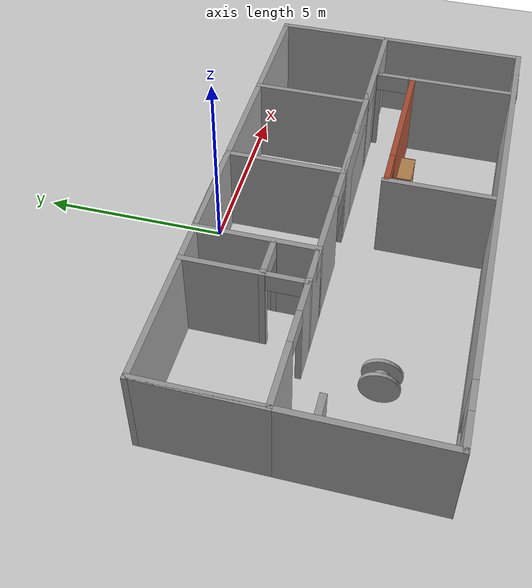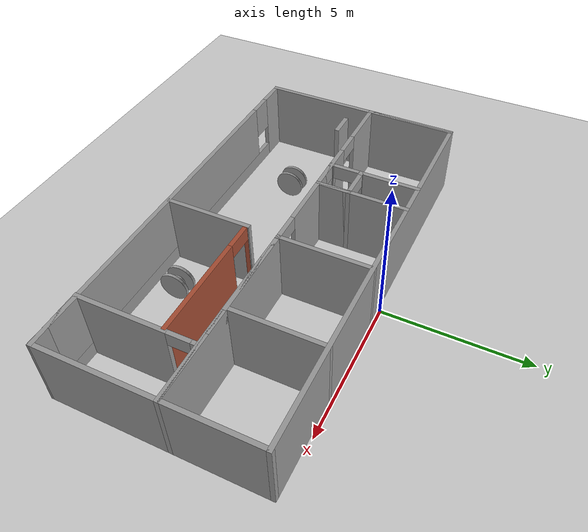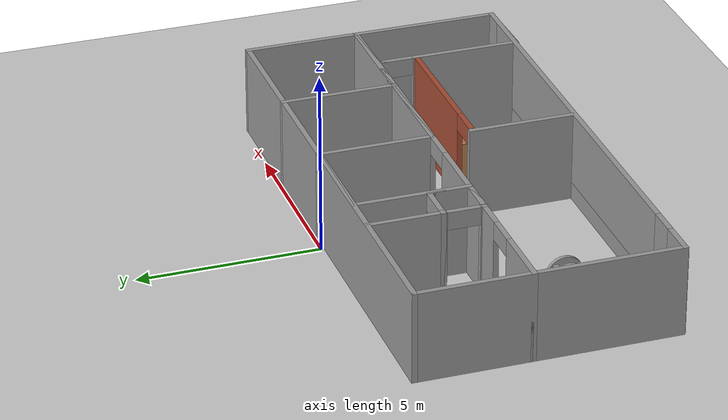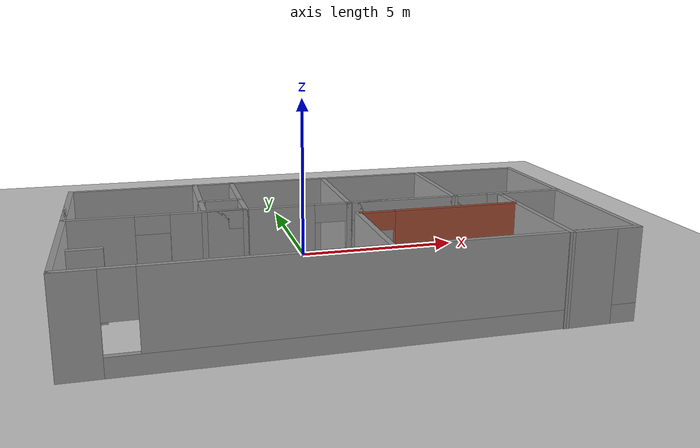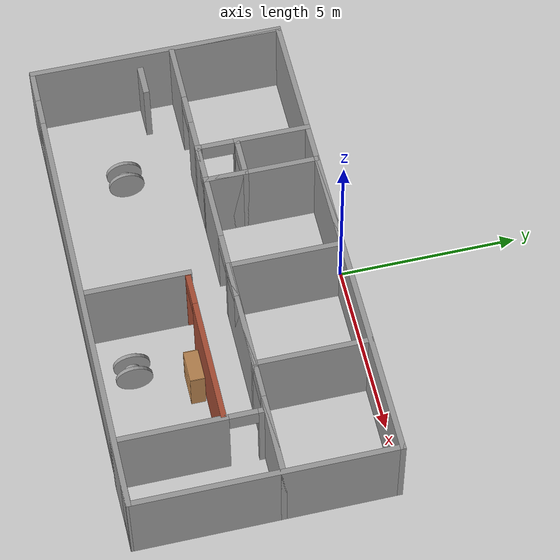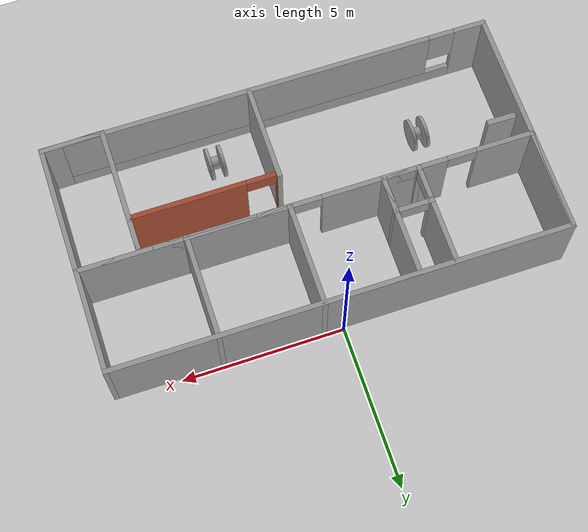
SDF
<sdf version="1.6">
 <world name="default">
  <plugin name="welcome" filename="libwelcome.so"/>
  <light name="sun" type="directional">
   <pose>0 0 10 0 -0 0</pose>
   <diffuse>0.8 0.8 0.8 1</diffuse>
   <specular>0.2 0.2 0.2 1</specular>
   <attenuation>
    <range>1000</range>
    <constant>0.9</constant>
    <linear>0.01</linear>
    <quadratic>0.001</quadratic>
   </attenuation>
   <direction>-0.5 0.1 -0.9</direction>
  </light>
  <model name="ground_plane">
   <static>1</static>
   <link name="link">
    <collision name="collision">
     <geometry><plane><normal>0 0 1</normal><size>100 100</size></plane></geometry>
     <surface>
      <contact><collide_bitmask>65535</collide_bitmask></contact>
      <friction><ode><mu>100</mu><mu2>50</mu2></ode></friction>
     </surface>
    </collision>
    <visual name="visual">
     <cast_shadows>0</cast_shadows>
     <geometry><plane><normal>0 0 1</normal><size>100 100</size></plane></geometry>
     <material>
      <script><uri>file://media/materials/scripts/gazebo.material</uri><name>Gazebo/Grey</name></script>
     </material>
    </visual>
   </link>
  </model>
  <gravity>0 0 -9.8</gravity>
  <magnetic_field>6e-06 2.3e-05 -4.2e-05</magnetic_field>
  <atmosphere type="adiabatic"/>
  <physics name="default_physics" default="0" type="ode">
   <max_step_size>0.001</max_step_size>
   <real_time_factor>1</real_time_factor>
   <real_time_update_rate>1000</real_time_update_rate>
  </physics>
  <scene><ambient>0.4 0.4 0.4 1</ambient><background>0.7 0.7 0.7 1</background><shadows>1</shadows></scene>
  <audio><device>default</device></audio>
  <spherical_coordinates>
   <surface_model>EARTH_WGS84</surface_model>
   <latitude_deg>0</latitude_deg>
   <longitude_deg>0</longitude_deg>
   <elevation>0</elevation>
   <heading_deg>0</heading_deg>
  </spherical_coordinates>
  <model name="model">
   <pose>0.01562 -3.70069 0 0 -0 0</pose>
   <link name="Door_0">
    <collision name="Door_0_Collision">
     <geometry><box><size>0.9 0.17 2</size></box></geometry>
     <pose>0 0 1 0 -0 0</pose>
    </collision>
    <visual name="Door_0_Visual">
     <pose>0 0 1 0 -0 0</pose>
     <geometry><box><size>0.9 0.17 2</size></box></geometry>
     <material>
      <script><uri>file://media/materials/scripts/gazebo.material</uri><name>Gazebo/Grey</name></script>
     </material>
    </visual>
    <pose>-6.39512 -0.487309 0 0 -0 0</pose>
   </link>
   <link name="Wall_0">
    <collision name="Wall_0_Collision">
     <geometry><box><size>7.2155 0.15 2.5</size></box></geometry>
     <pose>0 0 1.25 0 -0 0</pose>
    </collision>
    <visual name="Wall_0_Visual">
     <pose>0 0 1.25 0 -0 0</pose>
     <geometry><box><size>7.2155 0.15 2.5</size></box></geometry>
     <material>
      <script><uri>file://media/materials/scripts/gazebo.material</uri><name>Gazebo/Grey</name></script>
      <ambient>1 1 1 1</ambient>
     </material>
     <meta><layer>0</layer></meta>
    </visual>
    <pose>-6.92562 0.017941 0 0 -0 -1.5708</pose>
   </link>
   <link name="Wall_13">
    <pose>-0.000621 -3.52631 0 0 -0 0</pose>
    <visual name="Wall_13_Visual_0">
     <pose>-6.48325 0 1.25 0 -0 0</pose>
     <geometry><box><size>1.0335 0.15 2.5</size></box></geometry>
     <material>
      <script><uri>file://media/materials/scripts/gazebo.material</uri><name>Gazebo/Grey</name></script>
      <ambient>1 1 1 1</ambient>
     </material>
     <meta><layer>0</layer></meta>
    </visual>
    <collision name="Wall_13_Collision_0">
     <geometry><box><size>1.0335 0.15 2.5</size></box></geometry>
     <pose>-6.48325 0 1.25 0 -0 0</pose>
    </collision>
    <visual name="Wall_13_Visual_1">
     <pose>0.51675 0 0.25 0 -0 0</pose>
     <geometry><box><size>12.9665 0.15 0.5</size></box></geometry>
     <material>
      <script><uri>file://media/materials/scripts/gazebo.material</uri><name>Gazebo/Grey</name></script>
      <ambient>1 1 1 1</ambient>
     </material>
     <meta><layer>0</layer></meta>
    </visual>
    <collision name="Wall_13_Collision_1">
     <geometry><box><size>12.9665 0.15 0.5</size></box></geometry>
     <pose>0.51675 0 0.25 0 -0 0</pose>
    </collision>
    <visual name="Wall_13_Visual_2">
     <pose>0.91675 0 1.5 0 -0 0</pose>
     <geometry><box><size>12.1665 0.15 2</size></box></geometry>
     <material>
      <script><uri>file://media/materials/scripts/gazebo.material</uri><name>Gazebo/Grey</name></script>
      <ambient>1 1 1 1</ambient>
     </material>
     <meta><layer>0</layer></meta>
    </visual>
    <collision name="Wall_13_Collision_2">
     <geometry><box><size>12.1665 0.15 2</size></box></geometry>
     <pose>0.91675 0 1.5 0 -0 0</pose>
    </collision>
    <visual name="Wall_13_Visual_3">
     <pose>-5.5665 0 1.9 0 -0 0</pose>
     <geometry><box><size>0.8 0.15 1.2</size></box></geometry>
     <material>
      <script><uri>file://media/materials/scripts/gazebo.material</uri><name>Gazebo/Grey</name></script>
      <ambient>1 1 1 1</ambient>
     </material>
     <meta><layer>0</layer></meta>
    </visual>
    <collision name="Wall_13_Collision_3">
     <geometry><box><size>0.8 0.15 1.2</size></box></geometry>
     <pose>-5.5665 0 1.9 0 -0 0</pose>
    </collision>
   </link>
   <link name="Wall_14">
    <collision name="Wall_14_Collision">
     <geometry><box><size>7.2155 0.15 2.5</size></box></geometry>
     <pose>0 0 1.25 0 -0 0</pose>
    </collision>
    <visual name="Wall_14_Visual">
     <pose>0 0 1.25 0 -0 0</pose>
     <geometry><box><size>7.2155 0.15 2.5</size></box></geometry>
     <material>
      <script><uri>file://media/materials/scripts/gazebo.material</uri><name>Gazebo/Grey</name></script>
      <ambient>1 1 1 1</ambient>
     </material>
     <meta><layer>0</layer></meta>
    </visual>
    <pose>6.92438 0.017941 0 0 -0 1.5708</pose>
   </link>
   <link name="Wall_15">
    <collision name="Wall_15_Collision">
     <geometry><box><size>14 0.15 2.5</size></box></geometry>
     <pose>0 0 1.25 0 -0 0</pose>
    </collision>
    <visual name="Wall_15_Visual">
     <pose>0 0 1.25 0 -0 0</pose>
     <geometry><box><size>14 0.15 2.5</size></box></geometry>
     <material>
      <script><uri>file://media/materials/scripts/gazebo.material</uri><name>Gazebo/Grey</name></script>
      <ambient>1 1 1 1</ambient>
     </material>
     <meta><layer>0</layer></meta>
    </visual>
    <pose>-0.000621 3.55069 0 0 -0 3.14159</pose>
   </link>
   <link name="Wall_20">
    <collision name="Wall_20_Collision">
     <geometry><box><size>3.25 0.15 2.5</size></box></geometry>
     <pose>0 0 1.25 0 -0 0</pose>
    </collision>
    <visual name="Wall_20_Visual">
     <pose>0 0 1.25 0 -0 0</pose>
     <geometry><box><size>3.25 0.15 2.5</size></box></geometry>
     <material>
      <script><uri>file://media/materials/scripts/gazebo.material</uri><name>Gazebo/Grey</name></script>
      <ambient>1 1 1 1</ambient>
     </material>
     <meta><layer>0</layer></meta>
    </visual>
    <pose>-6.92562 2.00069 0 0 -0 -1.5708</pose>
   </link>
   <link name="Wall_21">
    <pose>-0.000621 0.450691 0 0 -0 0</pose>
    <visual name="Wall_21_Visual_0">
     <pose>-6.08275 0 1.25 0 -0 0</pose>
     <geometry><box><size>1.8345 0.15 2.5</size></box></geometry>
     <material>
      <script><uri>file://media/materials/scripts/gazebo.material</uri><name>Gazebo/Grey</name></script>
      <ambient>1 1 1 1</ambient>
     </material>
     <meta><layer>0</layer></meta>
    </visual>
    <collision name="Wall_21_Collision_0">
     <geometry><box><size>1.8345 0.15 2.5</size></box></geometry>
     <pose>-6.08275 0 1.25 0 -0 0</pose>
    </collision>
    <visual name="Wall_21_Visual_1">
     <pose>-2.32925 0 1.25 0 -0 0</pose>
     <geometry><box><size>3.8725 0.15 2.5</size></box></geometry>
     <material>
      <script><uri>file://media/materials/scripts/gazebo.material</uri><name>Gazebo/Grey</name></script>
      <ambient>1 1 1 1</ambient>
     </material>
     <meta><layer>0</layer></meta>
    </visual>
    <collision name="Wall_21_Collision_1">
     <geometry><box><size>3.8725 0.15 2.5</size></box></geometry>
     <pose>-2.32925 0 1.25 0 -0 0</pose>
    </collision>
    <visual name="Wall_21_Visual_2">
     <pose>3.7535 0 1.25 0 -0 0</pose>
     <geometry><box><size>6.493 0.15 2.5</size></box></geometry>
     <material>
      <script><uri>file://media/materials/scripts/gazebo.material</uri><name>Gazebo/Grey</name></script>
      <ambient>1 1 1 1</ambient>
     </material>
     <meta><layer>0</layer></meta>
    </visual>
    <collision name="Wall_21_Collision_2">
     <geometry><box><size>6.493 0.15 2.5</size></box></geometry>
     <pose>3.7535 0 1.25 0 -0 0</pose>
    </collision>
    <visual name="Wall_21_Visual_3">
     <pose>-4.7155 0 2.25 0 -0 0</pose>
     <geometry><box><size>0.9 0.15 0.5</size></box></geometry>
     <material>
      <script><uri>file://media/materials/scripts/gazebo.material</uri><name>Gazebo/Grey</name></script>
      <ambient>1 1 1 1</ambient>
     </material>
     <meta><layer>0</layer></meta>
    </visual>
    <collision name="Wall_21_Collision_3">
     <geometry><box><size>0.9 0.15 0.5</size></box></geometry>
     <pose>-4.7155 0 2.25 0 -0 0</pose>
    </collision>
    <visual name="Wall_21_Visual_4">
     <pose>0.057 0 2.25 0 -0 0</pose>
     <geometry><box><size>0.9 0.15 0.5</size></box></geometry>
     <material>
      <script><uri>file://media/materials/scripts/gazebo.material</uri><name>Gazebo/Grey</name></script>
      <ambient>1 1 1 1</ambient>
     </material>
     <meta><layer>0</layer></meta>
    </visual>
    <collision name="Wall_21_Collision_4">
     <geometry><box><size>0.9 0.15 0.5</size></box></geometry>
     <pose>0.057 0 2.25 0 -0 0</pose>
    </collision>
   </link>
   <link name="Wall_23">
    <pose>2.80688 -0.663809 0 0 -0 3.14159</pose>
    <visual name="Wall_23_Visual_0">
     <pose>-0.49225 0 1.25 0 -0 0</pose>
     <geometry><box><size>3.5155 0.15 2.5</size></box></geometry>
     <material>
      <script><uri>file://media/materials/scripts/gazebo.material</uri><name>Gazebo/Bricks</name></script>
      <ambient>0.435294 0.796078 0.67451 1</ambient>
     </material>
     <meta><layer>0</layer></meta>
    </visual>
    <collision name="Wall_23_Collision_0">
     <geometry><box><size>3.5155 0.15 2.5</size></box></geometry>
     <pose>-0.49225 0 1.25 0 -0 0</pose>
    </collision>
    <visual name="Wall_23_Visual_1">
     <pose>2.20775 0 1.25 0 -0 0</pose>
     <geometry><box><size>0.0845 0.15 2.5</size></box></geometry>
     <material>
      <script><uri>file://media/materials/scripts/gazebo.material</uri><name>Gazebo/Bricks</name></script>
      <ambient>0.435294 0.796078 0.67451 1</ambient>
     </material>
     <meta><layer>0</layer></meta>
    </visual>
    <collision name="Wall_23_Collision_1">
     <geometry><box><size>0.0845 0.15 2.5</size></box></geometry>
     <pose>2.20775 0 1.25 0 -0 0</pose>
    </collision>
    <visual name="Wall_23_Visual_2">
     <pose>1.7155 0 2.25 0 -0 0</pose>
     <geometry><box><size>0.9 0.15 0.5</size></box></geometry>
     <material>
      <script><uri>file://media/materials/scripts/gazebo.material</uri><name>Gazebo/Bricks</name></script>
      <ambient>0.435294 0.796078 0.67451 1</ambient>
     </material>
     <meta><layer>0</layer></meta>
    </visual>
    <collision name="Wall_23_Collision_2">
     <geometry><box><size>0.9 0.15 0.5</size></box></geometry>
     <pose>1.7155 0 2.25 0 -0 0</pose>
    </collision>
   </link>
   <link name="Wall_25">
    <collision name="Wall_25_Collision">
     <geometry><box><size>2.00004 0.15 2.5</size></box></geometry>
     <pose>0 0 1.25 0 -0 0</pose>
    </collision>
    <visual name="Wall_25_Visual">
     <pose>0 0 1.25 0 -0 0</pose>
     <geometry><box><size>2.00004 0.15 2.5</size></box></geometry>
     <material>
      <script><uri>file://media/materials/scripts/gazebo.material</uri><name>Gazebo/Grey</name></script>
      <ambient>1 1 1 1</ambient>
     </material>
     <meta><layer>0</layer></meta>
    </visual>
    <pose>5.99938 -3.53206 0 0 -0 -3.12295</pose>
   </link>
   <link name="Wall_26">
    <pose>5.07438 -1.62431 0 0 -0 1.5708</pose>
    <visual name="Wall_26_Visual_0">
     <pose>-0.461 0 1.25 0 -0 0</pose>
     <geometry><box><size>3.078 0.15 2.5</size></box></geometry>
     <material>
      <script><uri>file://media/materials/scripts/gazebo.material</uri><name>Gazebo/Grey</name></script>
      <ambient>1 1 1 1</ambient>
     </material>
     <meta><layer>0</layer></meta>
    </visual>
    <collision name="Wall_26_Collision_0">
     <geometry><box><size>3.078 0.15 2.5</size></box></geometry>
     <pose>-0.461 0 1.25 0 -0 0</pose>
    </collision>
    <visual name="Wall_26_Visual_1">
     <pose>1.989 0 1.25 0 -0 0</pose>
     <geometry><box><size>0.022 0.15 2.5</size></box></geometry>
     <material>
      <script><uri>file://media/materials/scripts/gazebo.material</uri><name>Gazebo/Grey</name></script>
      <ambient>1 1 1 1</ambient>
     </material>
     <meta><layer>0</layer></meta>
    </visual>
    <collision name="Wall_26_Collision_1">
     <geometry><box><size>0.022 0.15 2.5</size></box></geometry>
     <pose>1.989 0 1.25 0 -0 0</pose>
    </collision>
    <visual name="Wall_26_Visual_2">
     <pose>1.528 0 2.25 0 -0 0</pose>
     <geometry><box><size>0.9 0.15 0.5</size></box></geometry>
     <material>
      <script><uri>file://media/materials/scripts/gazebo.material</uri><name>Gazebo/Grey</name></script>
      <ambient>1 1 1 1</ambient>
     </material>
     <meta><layer>0</layer></meta>
    </visual>
    <collision name="Wall_26_Collision_2">
     <geometry><box><size>0.9 0.15 0.5</size></box></geometry>
     <pose>1.528 0 2.25 0 -0 0</pose>
    </collision>
   </link>
   <link name="Wall_27">
    <collision name="Wall_27_Collision">
     <geometry><box><size>0.15 0.15 2.5</size></box></geometry>
     <pose>0 0 1.25 0 -0 0</pose>
    </collision>
    <visual name="Wall_27_Visual">
     <pose>0 0 1.25 0 -0 0</pose>
     <geometry><box><size>0.15 0.15 2.5</size></box></geometry>
     <material>
      <script><uri>file://media/materials/scripts/gazebo.material</uri><name>Gazebo/Grey</name></script>
      <ambient>1 1 1 1</ambient>
     </material>
     <meta><layer>0</layer></meta>
    </visual>
    <pose>5.07438 0.300691 0 0 -0 0</pose>
   </link>
   <link name="Wall_29">
    <pose>3.74938 0.450691 0 0 -0 3.14159</pose>
    <visual name="Wall_29_Visual_0">
     <pose>-2.09075 0 1.25 0 -0 0</pose>
     <geometry><box><size>2.3185 0.15 2.5</size></box></geometry>
     <material>
      <script><uri>file://media/materials/scripts/gazebo.material</uri><name>Gazebo/Grey</name></script>
      <ambient>1 1 1 1</ambient>
     </material>
     <meta><layer>0</layer></meta>
    </visual>
    <collision name="Wall_29_Collision_0">
     <geometry><box><size>2.3185 0.15 2.5</size></box></geometry>
     <pose>-2.09075 0 1.25 0 -0 0</pose>
    </collision>
    <visual name="Wall_29_Visual_1">
     <pose>1.60925 0 1.25 0 -0 0</pose>
     <geometry><box><size>3.2815 0.15 2.5</size></box></geometry>
     <material>
      <script><uri>file://media/materials/scripts/gazebo.material</uri><name>Gazebo/Grey</name></script>
      <ambient>1 1 1 1</ambient>
     </material>
     <meta><layer>0</layer></meta>
    </visual>
    <collision name="Wall_29_Collision_1">
     <geometry><box><size>3.2815 0.15 2.5</size></box></geometry>
     <pose>1.60925 0 1.25 0 -0 0</pose>
    </collision>
    <visual name="Wall_29_Visual_2">
     <pose>-0.4815 0 2.25 0 -0 0</pose>
     <geometry><box><size>0.9 0.15 0.5</size></box></geometry>
     <material>
      <script><uri>file://media/materials/scripts/gazebo.material</uri><name>Gazebo/Grey</name></script>
      <ambient>1 1 1 1</ambient>
     </material>
     <meta><layer>0</layer></meta>
    </visual>
    <collision name="Wall_29_Collision_2">
     <geometry><box><size>0.9 0.15 0.5</size></box></geometry>
     <pose>-0.4815 0 2.25 0 -0 0</pose>
    </collision>
   </link>
   <link name="Wall_30">
    <collision name="Wall_30_Collision">
     <geometry><box><size>3.25 0.15 2.5</size></box></geometry>
     <pose>0 0 1.25 0 -0 0</pose>
    </collision>
    <visual name="Wall_30_Visual">
     <pose>0 0 1.25 0 -0 0</pose>
     <geometry><box><size>3.25 0.15 2.5</size></box></geometry>
     <material>
      <script><uri>file://media/materials/scripts/gazebo.material</uri><name>Gazebo/Grey</name></script>
      <ambient>1 1 1 1</ambient>
     </material>
     <meta><layer>0</layer></meta>
    </visual>
    <pose>0.574379 2.00069 0 0 -0 1.5708</pose>
   </link>
   <link name="Wall_31">
    <collision name="Wall_31_Collision">
     <geometry><box><size>3 0.15 2.5</size></box></geometry>
     <pose>0 0 1.25 0 -0 0</pose>
    </collision>
    <visual name="Wall_31_Visual">
     <pose>0 0 1.25 0 -0 0</pose>
     <geometry><box><size>3 0.15 2.5</size></box></geometry>
     <material>
      <script><uri>file://media/materials/scripts/gazebo.material</uri><name>Gazebo/Grey</name></script>
      <ambient>1 1 1 1</ambient>
     </material>
     <meta><layer>0</layer></meta>
    </visual>
    <pose>-0.850621 3.55069 0 0 -0 3.14159</pose>
   </link>
   <link name="Wall_32">
    <collision name="Wall_32_Collision">
     <geometry><box><size>3.25 0.15 2.5</size></box></geometry>
     <pose>0 0 1.25 0 -0 0</pose>
    </collision>
    <visual name="Wall_32_Visual">
     <pose>0 0 1.25 0 -0 0</pose>
     <geometry><box><size>3.25 0.15 2.5</size></box></geometry>
     <material>
      <script><uri>file://media/materials/scripts/gazebo.material</uri><name>Gazebo/Grey</name></script>
      <ambient>1 1 1 1</ambient>
     </material>
     <meta><layer>0</layer></meta>
    </visual>
    <pose>-2.27562 2.00069 0 0 -0 -1.5708</pose>
   </link>
   <link name="Wall_33">
    <pose>-2.82562 0.450691 0 0 -0 3.14159</pose>
    <visual name="Wall_33_Visual_0">
     <pose>-0.54675 0 1.25 0 -0 0</pose>
     <geometry><box><size>0.1565 0.15 2.5</size></box></geometry>
     <material>
      <script><uri>file://media/materials/scripts/gazebo.material</uri><name>Gazebo/Grey</name></script>
      <ambient>1 1 1 1</ambient>
     </material>
     <meta><layer>0</layer></meta>
    </visual>
    <collision name="Wall_33_Collision_0">
     <geometry><box><size>0.1565 0.15 2.5</size></box></geometry>
     <pose>-0.54675 0 1.25 0 -0 0</pose>
    </collision>
    <visual name="Wall_33_Visual_1">
     <pose>0.52825 0 1.25 0 -0 0</pose>
     <geometry><box><size>0.1935 0.15 2.5</size></box></geometry>
     <material>
      <script><uri>file://media/materials/scripts/gazebo.material</uri><name>Gazebo/Grey</name></script>
      <ambient>1 1 1 1</ambient>
     </material>
     <meta><layer>0</layer></meta>
    </visual>
    <collision name="Wall_33_Collision_1">
     <geometry><box><size>0.1935 0.15 2.5</size></box></geometry>
     <pose>0.52825 0 1.25 0 -0 0</pose>
    </collision>
    <visual name="Wall_33_Visual_2">
     <pose>-0.0185 0 2.25 0 -0 0</pose>
     <geometry><box><size>0.9 0.15 0.5</size></box></geometry>
     <material>
      <script><uri>file://media/materials/scripts/gazebo.material</uri><name>Gazebo/Grey</name></script>
      <ambient>1 1 1 1</ambient>
     </material>
     <meta><layer>0</layer></meta>
    </visual>
    <collision name="Wall_33_Collision_2">
     <geometry><box><size>0.9 0.15 0.5</size></box></geometry>
     <pose>-0.0185 0 2.25 0 -0 0</pose>
    </collision>
   </link>
   <link name="Wall_34">
    <pose>-3.37562 2.00069 0 0 -0 1.5708</pose>
    <visual name="Wall_34_Visual_0">
     <pose>-1.534 0 1.25 0 -0 0</pose>
     <geometry><box><size>0.182 0.15 2.5</size></box></geometry>
     <material>
      <script><uri>file://media/materials/scripts/gazebo.material</uri><name>Gazebo/Grey</name></script>
      <ambient>1 1 1 1</ambient>
     </material>
     <meta><layer>0</layer></meta>
    </visual>
    <collision name="Wall_34_Collision_0">
     <geometry><box><size>0.182 0.15 2.5</size></box></geometry>
     <pose>-1.534 0 1.25 0 -0 0</pose>
    </collision>
    <visual name="Wall_34_Visual_1">
     <pose>0.541 0 1.25 0 -0 0</pose>
     <geometry><box><size>2.168 0.15 2.5</size></box></geometry>
     <material>
      <script><uri>file://media/materials/scripts/gazebo.material</uri><name>Gazebo/Grey</name></script>
      <ambient>1 1 1 1</ambient>
     </material>
     <meta><layer>0</layer></meta>
    </visual>
    <collision name="Wall_34_Collision_1">
     <geometry><box><size>2.168 0.15 2.5</size></box></geometry>
     <pose>0.541 0 1.25 0 -0 0</pose>
    </collision>
    <visual name="Wall_34_Visual_2">
     <pose>-0.993 0 2.25 0 -0 0</pose>
     <geometry><box><size>0.9 0.15 0.5</size></box></geometry>
     <material>
      <script><uri>file://media/materials/scripts/gazebo.material</uri><name>Gazebo/Grey</name></script>
      <ambient>1 1 1 1</ambient>
     </material>
     <meta><layer>0</layer></meta>
    </visual>
    <collision name="Wall_34_Collision_2">
     <geometry><box><size>0.9 0.15 0.5</size></box></geometry>
     <pose>-0.993 0 2.25 0 -0 0</pose>
    </collision>
   </link>
   <link name="Wall_36">
    <collision name="Wall_36_Collision">
     <geometry><box><size>3 0.15 2.5</size></box></geometry>
     <pose>0 0 1.25 0 -0 0</pose>
    </collision>
    <visual name="Wall_36_Visual">
     <pose>0 0 1.25 0 -0 0</pose>
     <geometry><box><size>3 0.15 2.5</size></box></geometry>
     <material>
      <script><uri>file://media/materials/scripts/gazebo.material</uri><name>Gazebo/Grey</name></script>
      <ambient>1 1 1 1</ambient>
     </material>
     <meta><layer>0</layer></meta>
    </visual>
    <pose>0.550879 -2.04731 0 0 -0 -1.5708</pose>
   </link>
   <link name="Wall_38">
    <collision name="Wall_38_Collision">
     <geometry><box><size>1.25 0.15 2.5</size></box></geometry>
     <pose>0 0 1.25 0 -0 0</pose>
    </collision>
    <visual name="Wall_38_Visual">
     <pose>0 0 1.25 0 -0 0</pose>
     <geometry><box><size>1.25 0.15 2.5</size></box></geometry>
     <material>
      <script><uri>file://media/materials/scripts/gazebo.material</uri><name>Gazebo/Grey</name></script>
      <ambient>1 1 1 1</ambient>
     </material>
     <meta><layer>0</layer></meta>
    </visual>
    <pose>-2.27562 1.00069 0 0 -0 1.5708</pose>
   </link>
   <link name="Wall_39">
    <pose>-2.82562 1.55069 0 0 -0 3.14159</pose>
    <visual name="Wall_39_Visual_0">
     <pose>-0.54675 0 1.25 0 -0 0</pose>
     <geometry><box><size>0.1565 0.15 2.5</size></box></geometry>
     <material>
      <script><uri>file://media/materials/scripts/gazebo.material</uri><name>Gazebo/Grey</name></script>
      <ambient>1 1 1 1</ambient>
     </material>
     <meta><layer>0</layer></meta>
    </visual>
    <collision name="Wall_39_Collision_0">
     <geometry><box><size>0.1565 0.15 2.5</size></box></geometry>
     <pose>-0.54675 0 1.25 0 -0 0</pose>
    </collision>
    <visual name="Wall_39_Visual_1">
     <pose>0.52825 0 1.25 0 -0 0</pose>
     <geometry><box><size>0.1935 0.15 2.5</size></box></geometry>
     <material>
      <script><uri>file://media/materials/scripts/gazebo.material</uri><name>Gazebo/Grey</name></script>
      <ambient>1 1 1 1</ambient>
     </material>
     <meta><layer>0</layer></meta>
    </visual>
    <collision name="Wall_39_Collision_1">
     <geometry><box><size>0.1935 0.15 2.5</size></box></geometry>
     <pose>0.52825 0 1.25 0 -0 0</pose>
    </collision>
    <visual name="Wall_39_Visual_2">
     <pose>-0.0185 0 2.25 0 -0 0</pose>
     <geometry><box><size>0.9 0.15 0.5</size></box></geometry>
     <material>
      <script><uri>file://media/materials/scripts/gazebo.material</uri><name>Gazebo/Grey</name></script>
      <ambient>1 1 1 1</ambient>
     </material>
     <meta><layer>0</layer></meta>
    </visual>
    <collision name="Wall_39_Collision_2">
     <geometry><box><size>0.9 0.15 0.5</size></box></geometry>
     <pose>-0.0185 0 2.25 0 -0 0</pose>
    </collision>
   </link>
   <link name="Wall_41">
    <pose>2.12438 0.450691 0 0 -0 0</pose>
    <visual name="Wall_41_Visual_0">
     <pose>-1.5425 0 1.25 0 -0 0</pose>
     <geometry><box><size>0.165 0.15 2.5</size></box></geometry>
     <material>
      <script><uri>file://media/materials/scripts/gazebo.material</uri><name>Gazebo/Grey</name></script>
      <ambient>1 1 1 1</ambient>
     </material>
     <meta><layer>0</layer></meta>
    </visual>
    <collision name="Wall_41_Collision_0">
     <geometry><box><size>0.165 0.15 2.5</size></box></geometry>
     <pose>-1.5425 0 1.25 0 -0 0</pose>
    </collision>
    <visual name="Wall_41_Visual_1">
     <pose>0.5325 0 1.25 0 -0 0</pose>
     <geometry><box><size>2.185 0.15 2.5</size></box></geometry>
     <material>
      <script><uri>file://media/materials/scripts/gazebo.material</uri><name>Gazebo/Grey</name></script>
      <ambient>1 1 1 1</ambient>
     </material>
     <meta><layer>0</layer></meta>
    </visual>
    <collision name="Wall_41_Collision_1">
     <geometry><box><size>2.185 0.15 2.5</size></box></geometry>
     <pose>0.5325 0 1.25 0 -0 0</pose>
    </collision>
    <visual name="Wall_41_Visual_2">
     <pose>-1.01 0 2.25 0 -0 0</pose>
     <geometry><box><size>0.9 0.15 0.5</size></box></geometry>
     <material>
      <script><uri>file://media/materials/scripts/gazebo.material</uri><name>Gazebo/Grey</name></script>
      <ambient>1 1 1 1</ambient>
     </material>
     <meta><layer>0</layer></meta>
    </visual>
    <collision name="Wall_41_Collision_2">
     <geometry><box><size>0.9 0.15 0.5</size></box></geometry>
     <pose>-1.01 0 2.25 0 -0 0</pose>
    </collision>
   </link>
   <link name="Wall_42">
    <collision name="Wall_42_Collision">
     <geometry><box><size>3.25 0.15 2.5</size></box></geometry>
     <pose>0 0 1.25 0 -0 0</pose>
    </collision>
    <visual name="Wall_42_Visual">
     <pose>0 0 1.25 0 -0 0</pose>
     <geometry><box><size>3.25 0.15 2.5</size></box></geometry>
     <material>
      <script><uri>file://media/materials/scripts/gazebo.material</uri><name>Gazebo/Grey</name></script>
      <ambient>1 1 1 1</ambient>
     </material>
     <meta><layer>0</layer></meta>
    </visual>
    <pose>3.67438 2.00069 0 0 -0 1.5708</pose>
   </link>
   <static>1</static>
  </model>
  <model name="bookshelf">
   <static>1</static>
   <link name="link">
    <inertial><mass>1</mass></inertial>
    <collision name="back">
     <pose>0 0.005 0.6 0 -0 0</pose>
     <geometry><box><size>0.9 0.01 1.2</size></box></geometry>
    </collision>
    <visual name="visual1">
     <pose>0 0.005 0.6 0 -0 0</pose>
     <geometry><box><size>0.9 0.01 1.2</size></box></geometry>
     <material>
      <script><uri>file://media/materials/scripts/gazebo.material</uri><name>Gazebo/Wood</name></script>
     </material>
    </visual>
    <collision name="left_side">
     <pose>0.45 -0.195 0.6 0 -0 0</pose>
     <geometry><box><size>0.02 0.4 1.2</size></box></geometry>
    </collision>
    <visual name="visual2">
     <pose>0.45 -0.195 0.6 0 -0 0</pose>
     <geometry><box><size>0.02 0.4 1.2</size></box></geometry>
     <material>
      <script><uri>file://media/materials/scripts/gazebo.material</uri><name>Gazebo/Wood</name></script>
     </material>
    </visual>
    <collision name="right_side">
     <pose>-0.45 -0.195 0.6 0 -0 0</pose>
     <geometry><box><size>0.02 0.4 1.2</size></box></geometry>
    </collision>
    <visual name="visual3">
     <pose>-0.45 -0.195 0.6 0 -0 0</pose>
     <geometry><box><size>0.02 0.4 1.2</size></box></geometry>
     <material>
      <script><uri>file://media/materials/scripts/gazebo.material</uri><name>Gazebo/Wood</name></script>
     </material>
    </visual>
    <collision name="bottom">
     <pose>0 -0.195 0.03 0 -0 0</pose>
     <geometry><box><size>0.88 0.4 0.06</size></box></geometry>
    </collision>
    <visual name="visual4">
     <pose>0 -0.195 0.03 0 -0 0</pose>
     <geometry><box><size>0.88 0.4 0.06</size></box></geometry>
     <material>
      <script><uri>file://media/materials/scripts/gazebo.material</uri><name>Gazebo/Wood</name></script>
     </material>
    </visual>
    <collision name="top">
     <pose>0 -0.195 1.19 0 -0 0</pose>
     <geometry><box><size>0.88 0.4 0.02</size></box></geometry>
    </collision>
    <visual name="visual5">
     <pose>0 -0.195 1.19 0 -0 0</pose>
     <geometry><box><size>0.88 0.4 0.02</size></box></geometry>
     <material>
      <script><uri>file://media/materials/scripts/gazebo.material</uri><name>Gazebo/Wood</name></script>
     </material>
    </visual>
    <collision name="low_shelf">
     <pose>0 -0.195 0.43 0 -0 0</pose>
     <geometry><box><size>0.88 0.4 0.02</size></box></geometry>
    </collision>
    <visual name="visual6">
     <pose>0 -0.195 0.43 0 -0 0</pose>
     <geometry><box><size>0.88 0.4 0.02</size></box></geometry>
     <material>
      <script><uri>file://media/materials/scripts/gazebo.material</uri><name>Gazebo/Wood</name></script>
     </material>
    </visual>
    <collision name="high_shelf">
     <pose>0 -0.195 0.8 0 -0 0</pose>
     <geometry><box><size>0.88 0.4 0.02</size></box></geometry>
    </collision>
    <visual name="visual7">
     <pose>0 -0.195 0.8 0 -0 0</pose>
     <geometry><box><size>0.88 0.4 0.02</size></box></geometry>
     <material>
      <script><uri>file://media/materials/scripts/gazebo.material</uri><name>Gazebo/Wood</name></script>
     </material>
    </visual>
   </link>
   <pose>2.63575 -4.47782 0 0 -0 0</pose>
  </model>
  <model name="MyRobot">
   <link name="link_4">
    <inertial>
     <mass>1</mass>
     <inertia><ixx>0.145833</ixx><ixy>0</ixy><ixz>0</ixz><iyy>0.145833</iyy><iyz>0</iyz><izz>0.125</izz></inertia>
    </inertial>
    <pose>1.78333 -6 0.6 0 1.57 0</pose>
    <visual name="visual">
     <geometry><cylinder><radius>0.5</radius><length>0.1</length></cylinder></geometry>
     <material>
      <lighting>1</lighting>
      <script><uri>file://media/materials/scripts/gazebo.material</uri><name>Gazebo/Grey</name></script>
      <shader type="vertex"><normal_map>__default__</normal_map></shader>
      <ambient>0.3 0.3 0.3 1</ambient>
      <diffuse>0.7 0.7 0.7 1</diffuse>
      <specular>0.01 0.01 0.01 1</specular>
      <emissive>0 0 0 1</emissive>
     </material>
    </visual>
    <collision name="collision">
     <geometry><cylinder><radius>0.5</radius><length>0.1</length></cylinder></geometry>
     <surface>
      <friction>
       <ode><mu>1</mu><mu2>1</mu2><fdir1>0 0 0</fdir1><slip1>0</slip1><slip2>0</slip2></ode>
       <torsional>
        <coefficient>1</coefficient>
        <patch_radius>0</patch_radius>
        <surface_radius>0</surface_radius>
        <use_patch_radius>1</use_patch_radius>
        <ode><slip>0</slip></ode>
       </torsional>
      </friction>
      <bounce><restitution_coefficient>0</restitution_coefficient><threshold>1e+06</threshold></bounce>
      <contact>
       <collide_without_contact>0</collide_without_contact>
       <collide_without_contact_bitmask>1</collide_without_contact_bitmask>
       <collide_bitmask>1</collide_bitmask>
       <ode>
        <soft_cfm>0</soft_cfm>
        <soft_erp>0.2</soft_erp>
        <kp>1e+13</kp>
        <kd>1</kd>
        <max_vel>0.01</max_vel>
        <min_depth>0</min_depth>
       </ode>
       <bullet>
        <split_impulse>1</split_impulse>
        <split_impulse_penetration_threshold>-0.01</split_impulse_penetration_threshold>
        <soft_cfm>0</soft_cfm>
        <soft_erp>0.2</soft_erp>
        <kp>1e+13</kp>
        <kd>1</kd>
       </bullet>
      </contact>
     </surface>
    </collision>
   </link>
   <link name="link_4_clone">
    <inertial>
     <mass>1</mass>
     <inertia><ixx>0.145833</ixx><ixy>0</ixy><ixz>0</ixz><iyy>0.145833</iyy><iyz>0</iyz><izz>0.125</izz></inertia>
    </inertial>
    <pose>2.03333 -6 0.6 0 1.57 0</pose>
    <visual name="visual">
     <geometry><cylinder><radius>0.2</radius><length>0.3</length></cylinder></geometry>
     <material>
      <lighting>1</lighting>
      <script><uri>file://media/materials/scripts/gazebo.material</uri><name>Gazebo/Grey</name></script>
      <shader type="vertex"><normal_map>__default__</normal_map></shader>
      <ambient>0.3 0.3 0.3 1</ambient>
      <diffuse>0.7 0.7 0.7 1</diffuse>
      <specular>0.01 0.01 0.01 1</specular>
      <emissive>0 0 0 1</emissive>
     </material>
    </visual>
    <collision name="collision">
     <geometry><cylinder><radius>0.2</radius><length>0.3</length></cylinder></geometry>
     <surface>
      <friction>
       <ode><mu>1</mu><mu2>1</mu2><fdir1>0 0 0</fdir1><slip1>0</slip1><slip2>0</slip2></ode>
       <torsional>
        <coefficient>1</coefficient>
        <patch_radius>0</patch_radius>
        <surface_radius>0</surface_radius>
        <use_patch_radius>1</use_patch_radius>
        <ode><slip>0</slip></ode>
       </torsional>
      </friction>
      <bounce><restitution_coefficient>0</restitution_coefficient><threshold>1e+06</threshold></bounce>
      <contact>
       <collide_without_contact>0</collide_without_contact>
       <collide_without_contact_bitmask>1</collide_without_contact_bitmask>
       <collide_bitmask>1</collide_bitmask>
       <ode>
        <soft_cfm>0</soft_cfm>
        <soft_erp>0.2</soft_erp>
        <kp>1e+13</kp>
        <kd>1</kd>
        <max_vel>0.01</max_vel>
        <min_depth>0</min_depth>
       </ode>
       <bullet>
        <split_impulse>1</split_impulse>
        <split_impulse_penetration_threshold>-0.01</split_impulse_penetration_threshold>
        <soft_cfm>0</soft_cfm>
        <soft_erp>0.2</soft_erp>
        <kp>1e+13</kp>
        <kd>1</kd>
       </bullet>
      </contact>
     </surface>
    </collision>
   </link>
   <link name="link_4_clone_0">
    <inertial>
     <mass>1</mass>
     <inertia><ixx>0.145833</ixx><ixy>0</ixy><ixz>0</ixz><iyy>0.145833</iyy><iyz>0</iyz><izz>0.125</izz></inertia>
    </inertial>
    <pose>2.18333 -6 0.6 0 1.57 0</pose>
    <visual name="visual">
     <geometry><cylinder><radius>0.5</radius><length>0.1</length></cylinder></geometry>
     <material>
      <lighting>1</lighting>
      <script><uri>file://media/materials/scripts/gazebo.material</uri><name>Gazebo/Grey</name></script>
      <shader type="vertex"><normal_map>__default__</normal_map></shader>
      <ambient>0.3 0.3 0.3 1</ambient>
      <diffuse>0.7 0.7 0.7 1</diffuse>
      <specular>0.01 0.01 0.01 1</specular>
      <emissive>0 0 0 1</emissive>
     </material>
    </visual>
    <collision name="collision">
     <geometry><cylinder><radius>0.5</radius><length>0.1</length></cylinder></geometry>
     <surface>
      <friction>
       <ode><mu>1</mu><mu2>1</mu2><fdir1>0 0 0</fdir1><slip1>0</slip1><slip2>0</slip2></ode>
       <torsional>
        <coefficient>1</coefficient>
        <patch_radius>0</patch_radius>
        <surface_radius>0</surface_radius>
        <use_patch_radius>1</use_patch_radius>
        <ode><slip>0</slip></ode>
       </torsional>
      </friction>
      <bounce><restitution_coefficient>0</restitution_coefficient><threshold>1e+06</threshold></bounce>
      <contact>
       <collide_without_contact>0</collide_without_contact>
       <collide_without_contact_bitmask>1</collide_without_contact_bitmask>
       <collide_bitmask>1</collide_bitmask>
       <ode>
        <soft_cfm>0</soft_cfm>
        <soft_erp>0.2</soft_erp>
        <kp>1e+13</kp>
        <kd>1</kd>
        <max_vel>0.01</max_vel>
        <min_depth>0</min_depth>
       </ode>
       <bullet>
        <split_impulse>1</split_impulse>
        <split_impulse_penetration_threshold>-0.01</split_impulse_penetration_threshold>
        <soft_cfm>0</soft_cfm>
        <soft_erp>0.2</soft_erp>
        <kp>1e+13</kp>
        <kd>1</kd>
       </bullet>
      </contact>
     </surface>
    </collision>
   </link>
   <static>0</static>
   <pose>-6.1679 0.78108 -0.098569 0 0.000803 0</pose>
  </model>
  <model name="MyRobot_0">
   <link name="link_4">
    <inertial>
     <mass>1</mass>
     <inertia><ixx>0.145833</ixx><ixy>0</ixy><ixz>0</ixz><iyy>0.145833</iyy><iyz>0</iyz><izz>0.125</izz></inertia>
    </inertial>
    <pose>1.78333 -6 0.6 0 1.57 0</pose>
    <visual name="visual">
     <geometry><cylinder><radius>0.5</radius><length>0.1</length></cylinder></geometry>
     <material>
      <lighting>1</lighting>
      <script><uri>file://media/materials/scripts/gazebo.material</uri><name>Gazebo/Grey</name></script>
      <shader type="vertex"><normal_map>__default__</normal_map></shader>
      <ambient>0.3 0.3 0.3 1</ambient>
      <diffuse>0.7 0.7 0.7 1</diffuse>
      <specular>0.01 0.01 0.01 1</specular>
      <emissive>0 0 0 1</emissive>
     </material>
    </visual>
    <collision name="collision">
     <geometry><cylinder><radius>0.5</radius><length>0.1</length></cylinder></geometry>
     <surface>
      <friction>
       <ode><mu>1</mu><mu2>1</mu2><fdir1>0 0 0</fdir1><slip1>0</slip1><slip2>0</slip2></ode>
       <torsional>
        <coefficient>1</coefficient>
        <patch_radius>0</patch_radius>
        <surface_radius>0</surface_radius>
        <use_patch_radius>1</use_patch_radius>
        <ode><slip>0</slip></ode>
       </torsional>
      </friction>
      <bounce><restitution_coefficient>0</restitution_coefficient><threshold>1e+06</threshold></bounce>
      <contact>
       <collide_without_contact>0</collide_without_contact>
       <collide_without_contact_bitmask>1</collide_without_contact_bitmask>
       <collide_bitmask>1</collide_bitmask>
       <ode>
        <soft_cfm>0</soft_cfm>
        <soft_erp>0.2</soft_erp>
        <kp>1e+13</kp>
        <kd>1</kd>
        <max_vel>0.01</max_vel>
        <min_depth>0</min_depth>
       </ode>
       <bullet>
        <split_impulse>1</split_impulse>
        <split_impulse_penetration_threshold>-0.01</split_impulse_penetration_threshold>
        <soft_cfm>0</soft_cfm>
        <soft_erp>0.2</soft_erp>
        <kp>1e+13</kp>
        <kd>1</kd>
       </bullet>
      </contact>
     </surface>
    </collision>
   </link>
   <link name="link_4_clone">
    <inertial>
     <mass>1</mass>
     <inertia><ixx>0.145833</ixx><ixy>0</ixy><ixz>0</ixz><iyy>0.145833</iyy><iyz>0</iyz><izz>0.125</izz></inertia>
    </inertial>
    <pose>2.03333 -6 0.6 0 1.57 0</pose>
    <visual name="visual">
     <geometry><cylinder><radius>0.2</radius><length>0.3</length></cylinder></geometry>
     <material>
      <lighting>1</lighting>
      <script><uri>file://media/materials/scripts/gazebo.material</uri><name>Gazebo/Grey</name></script>
      <shader type="vertex"><normal_map>__default__</normal_map></shader>
      <ambient>0.3 0.3 0.3 1</ambient>
      <diffuse>0.7 0.7 0.7 1</diffuse>
      <specular>0.01 0.01 0.01 1</specular>
      <emissive>0 0 0 1</emissive>
     </material>
    </visual>
    <collision name="collision">
     <geometry><cylinder><radius>0.2</radius><length>0.3</length></cylinder></geometry>
     <surface>
      <friction>
       <ode><mu>1</mu><mu2>1</mu2><fdir1>0 0 0</fdir1><slip1>0</slip1><slip2>0</slip2></ode>
       <torsional>
        <coefficient>1</coefficient>
        <patch_radius>0</patch_radius>
        <surface_radius>0</surface_radius>
        <use_patch_radius>1</use_patch_radius>
        <ode><slip>0</slip></ode>
       </torsional>
      </friction>
      <bounce><restitution_coefficient>0</restitution_coefficient><threshold>1e+06</threshold></bounce>
      <contact>
       <collide_without_contact>0</collide_without_contact>
       <collide_without_contact_bitmask>1</collide_without_contact_bitmask>
       <collide_bitmask>1</collide_bitmask>
       <ode>
        <soft_cfm>0</soft_cfm>
        <soft_erp>0.2</soft_erp>
        <kp>1e+13</kp>
        <kd>1</kd>
        <max_vel>0.01</max_vel>
        <min_depth>0</min_depth>
       </ode>
       <bullet>
        <split_impulse>1</split_impulse>
        <split_impulse_penetration_threshold>-0.01</split_impulse_penetration_threshold>
        <soft_cfm>0</soft_cfm>
        <soft_erp>0.2</soft_erp>
        <kp>1e+13</kp>
        <kd>1</kd>
       </bullet>
      </contact>
     </surface>
    </collision>
   </link>
   <link name="link_4_clone_0">
    <inertial>
     <mass>1</mass>
     <inertia><ixx>0.145833</ixx><ixy>0</ixy><ixz>0</ixz><iyy>0.145833</iyy><iyz>0</iyz><izz>0.125</izz></inertia>
    </inertial>
    <pose>2.18333 -6 0.6 0 1.57 0</pose>
    <visual name="visual">
     <geometry><cylinder><radius>0.5</radius><length>0.1</length></cylinder></geometry>
     <material>
      <lighting>1</lighting>
      <script><uri>file://media/materials/scripts/gazebo.material</uri><name>Gazebo/Grey</name></script>
      <shader type="vertex"><normal_map>__default__</normal_map></shader>
      <ambient>0.3 0.3 0.3 1</ambient>
      <diffuse>0.7 0.7 0.7 1</diffuse>
      <specular>0.01 0.01 0.01 1</specular>
      <emissive>0 0 0 1</emissive>
     </material>
    </visual>
    <collision name="collision">
     <geometry><cylinder><radius>0.5</radius><length>0.1</length></cylinder></geometry>
     <surface>
      <friction>
       <ode><mu>1</mu><mu2>1</mu2><fdir1>0 0 0</fdir1><slip1>0</slip1><slip2>0</slip2></ode>
       <torsional>
        <coefficient>1</coefficient>
        <patch_radius>0</patch_radius>
        <surface_radius>0</surface_radius>
        <use_patch_radius>1</use_patch_radius>
        <ode><slip>0</slip></ode>
       </torsional>
      </friction>
      <bounce><restitution_coefficient>0</restitution_coefficient><threshold>1e+06</threshold></bounce>
      <contact>
       <collide_without_contact>0</collide_without_contact>
       <collide_without_contact_bitmask>1</collide_without_contact_bitmask>
       <collide_bitmask>1</collide_bitmask>
       <ode>
        <soft_cfm>0</soft_cfm>
        <soft_erp>0.2</soft_erp>
        <kp>1e+13</kp>
        <kd>1</kd>
        <max_vel>0.01</max_vel>
        <min_depth>0</min_depth>
       </ode>
       <bullet>
        <split_impulse>1</split_impulse>
        <split_impulse_penetration_threshold>-0.01</split_impulse_penetration_threshold>
        <soft_cfm>0</soft_cfm>
        <soft_erp>0.2</soft_erp>
        <kp>1e+13</kp>
        <kd>1</kd>
       </bullet>
      </contact>
     </surface>
    </collision>
   </link>
   <static>0</static>
   <pose>0.050304 -0.23154 -0.098588 0 0.000791 0</pose>
  </model>
 </world>
</sdf>
